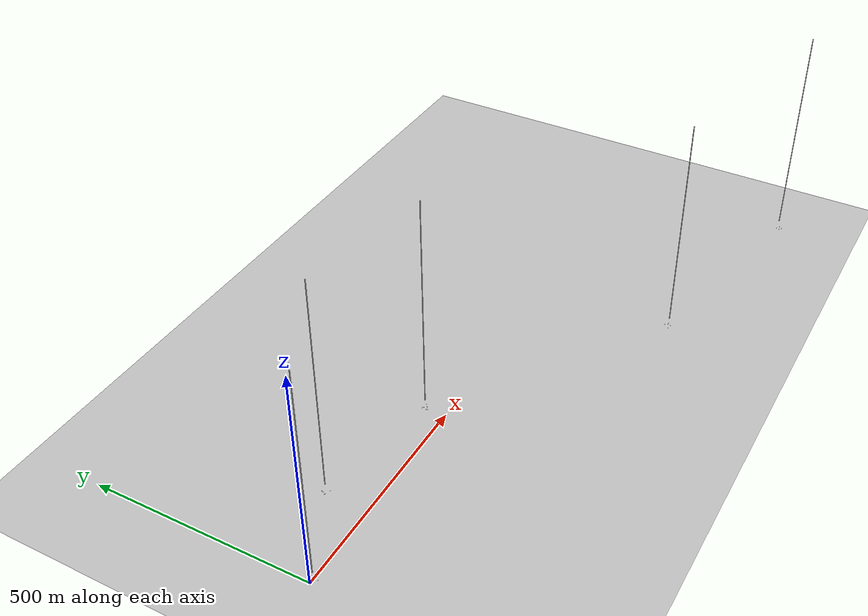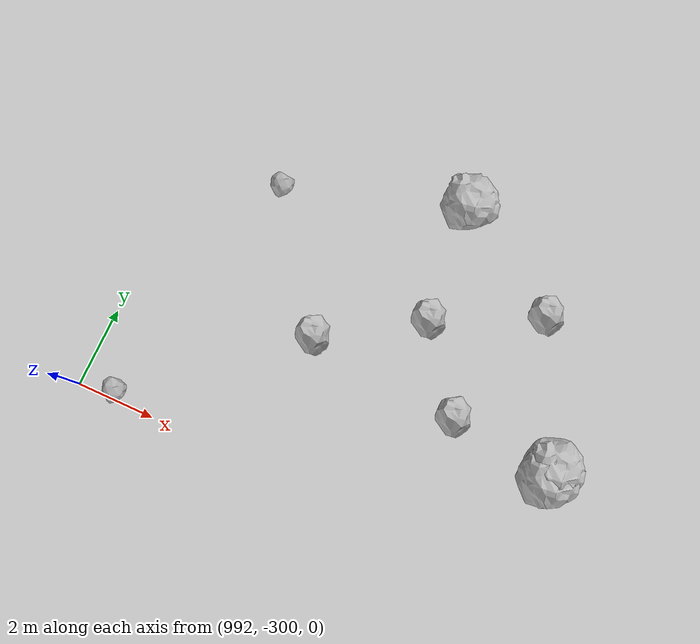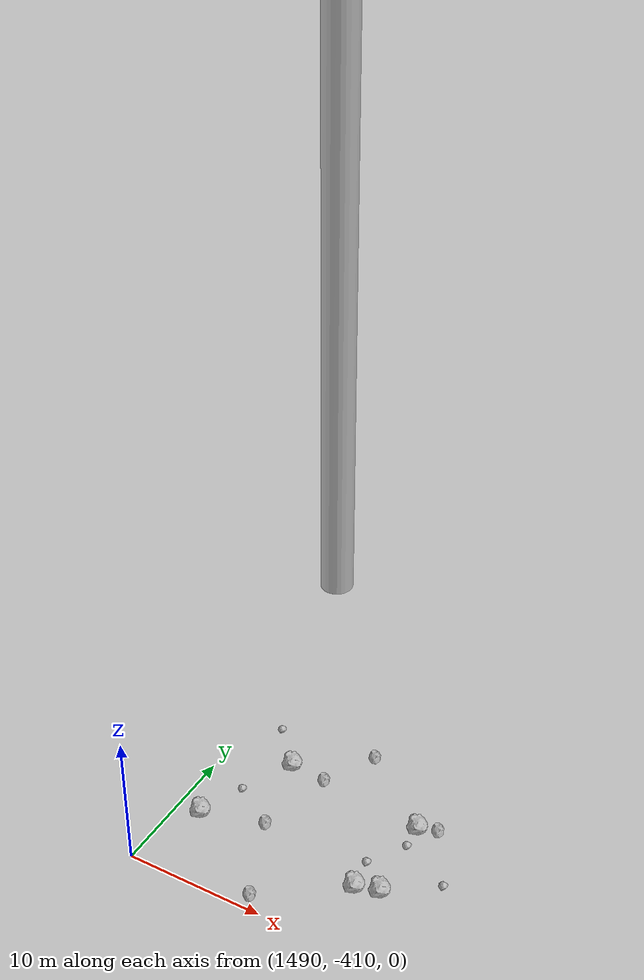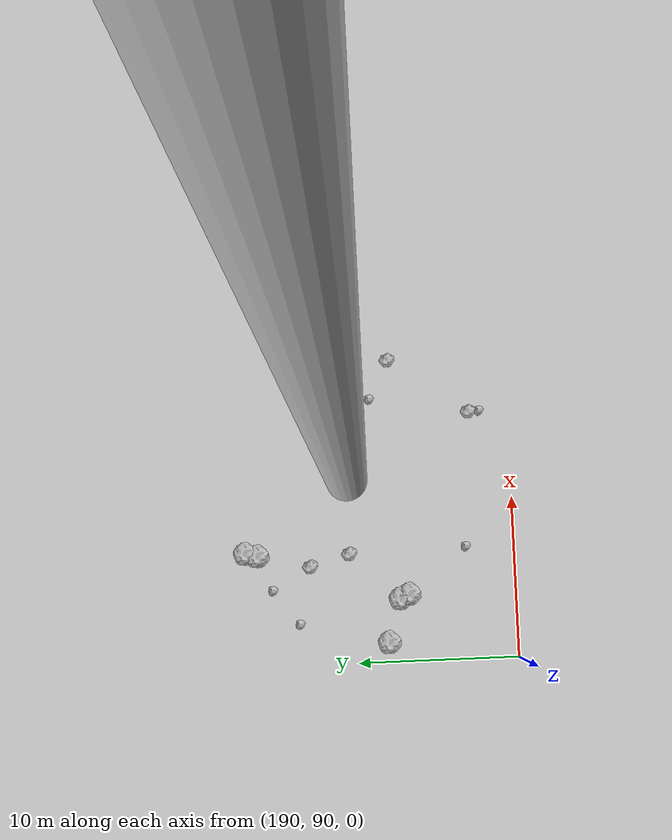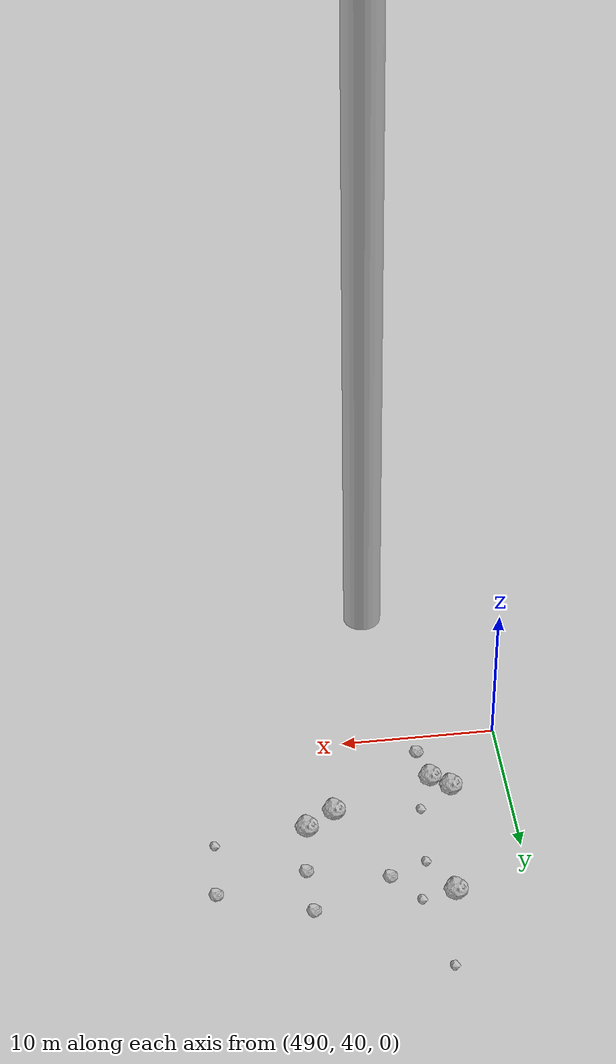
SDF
<?xml version="1.0" ?>
<sdf version="1.6">
  <world name="default">

    <include>
      <uri>model://custom_ground</uri>
    </include>

    <include>
      <uri>model://sun</uri>
    </include>

    <spherical_coordinates>
      <surface_model>EARTH_WGS84</surface_model>
      <latitude_deg>38.161479</latitude_deg>
      <longitude_deg>-122.454630</longitude_deg>
      <elevation>488.0</elevation>
      <heading_deg>90</heading_deg>
    </spherical_coordinates>

    <model name="rock1_0_0">
      <include>
        <uri>model://rock1</uri>
        <pose>17.688787751299813 -3.2370755171833565 0.5 0 0 0</pose>
      </include>
    </model>
    <model name="rock1_0_1">
      <include>
        <uri>model://rock1</uri>
        <pose>5.396047694618087 7.032196660427953 0.5 0 0 0</pose>
      </include>
    </model>
    <model name="rock1_0_2">
      <include>
        <uri>model://rock1</uri>
        <pose>14.14445244652763 8.385876624661076 0.5 0 0 0</pose>
      </include>
    </model>
    <model name="rock1_0_3">
      <include>
        <uri>model://rock1</uri>
        <pose>16.73019285737731 0.4838005141469708 0.5 0 0 0</pose>
      </include>
    </model>
    <model name="rock1_0_4">
      <include>
        <uri>model://rock1</uri>
        <pose>18.298150826258514 0.1784208609500748 0.5 0 0 0</pose>
      </include>
    </model>
    <model name="rock2_0_0">
      <include>
        <uri>model://rock2</uri>
        <pose>8.066369363671473 8.416463616261286 0.3 0 0 0</pose>
      </include>
    </model>
    <model name="rock2_0_1">
      <include>
        <uri>model://rock2</uri>
        <pose>15.28982258890489 8.256544803616649 0.3 0 0 0</pose>
      </include>
    </model>
    <model name="rock2_0_2">
      <include>
        <uri>model://rock2</uri>
        <pose>12.957619359505458 9.329820438663823 0.3 0 0 0</pose>
      </include>
    </model>
    <model name="rock2_0_3">
      <include>
        <uri>model://rock2</uri>
        <pose>18.323434957039424 4.011099036612924 0.3 0 0 0</pose>
      </include>
    </model>
    <model name="rock2_0_4">
      <include>
        <uri>model://rock2</uri>
        <pose>11.443972144177765 -3.0754477364086963 0.3 0 0 0</pose>
      </include>
    </model>
    <model name="rock3_0_0">
      <include>
        <uri>model://rock3</uri>
        <pose>15.160594903503418 6.633424551510579 0.2 0 0 0</pose>
      </include>
    </model>
    <model name="rock3_0_1">
      <include>
        <uri>model://rock3</uri>
        <pose>14.594624585863414 -1.528154307458534 0.2 0 0 0</pose>
      </include>
    </model>
    <model name="rock3_0_2">
      <include>
        <uri>model://rock3</uri>
        <pose>12.612091264073523 -9.153996060862557 0.2 0 0 0</pose>
      </include>
    </model>
    <model name="rock3_0_3">
      <include>
        <uri>model://rock3</uri>
        <pose>11.964483644792551 2.233440336377937 0.2 0 0 0</pose>
      </include>
    </model>
    <model name="rock3_0_4">
      <include>
        <uri>model://rock3</uri>
        <pose>4.820803834245353 7.783272304248342 0.2 0 0 0</pose>
      </include>
    </model>
    <model name="rock1_1_0">
      <include>
        <uri>model://rock1</uri>
        <pose>197.14980907824048 106.80546653032289 0.5 0 0 0</pose>
      </include>
    </model>
    <model name="rock1_1_1">
      <include>
        <uri>model://rock1</uri>
        <pose>193.9700908806631 97.24990235514491 0.5 0 0 0</pose>
      </include>
    </model>
    <model name="rock1_1_2">
      <include>
        <uri>model://rock1</uri>
        <pose>194.2284020299916 96.68850801719829 0.5 0 0 0</pose>
      </include>
    </model>
    <model name="rock1_1_3">
      <include>
        <uri>model://rock1</uri>
        <pose>191.29926047816477 98.03900958993381 0.5 0 0 0</pose>
      </include>
    </model>
    <model name="rock1_1_4">
      <include>
        <uri>model://rock1</uri>
        <pose>196.96080167461437 106.03894054646673 0.5 0 0 0</pose>
      </include>
    </model>
    <model name="rock2_1_0">
      <include>
        <uri>model://rock2</uri>
        <pose>196.86750057720062 100.3391522840526 0.3 0 0 0</pose>
      </include>
    </model>
    <model name="rock2_1_1">
      <include>
        <uri>model://rock2</uri>
        <pose>208.94944033073236 97.47078611389205 0.3 0 0 0</pose>
      </include>
    </model>
    <model name="rock2_1_2">
      <include>
        <uri>model://rock2</uri>
        <pose>206.51192183593977 102.44046848652125 0.3 0 0 0</pose>
      </include>
    </model>
    <model name="rock2_1_3">
      <include>
        <uri>model://rock2</uri>
        <pose>205.49611643049528 92.51067499507835 0.3 0 0 0</pose>
      </include>
    </model>
    <model name="rock2_1_4">
      <include>
        <uri>model://rock2</uri>
        <pose>196.16215642816354 102.80155538084657 0.3 0 0 0</pose>
      </include>
    </model>
    <model name="rock3_1_0">
      <include>
        <uri>model://rock3</uri>
        <pose>194.74091112446183 105.16037510505188 0.2 0 0 0</pose>
      </include>
    </model>
    <model name="rock3_1_1">
      <include>
        <uri>model://rock3</uri>
        <pose>192.58997944696216 103.54038815815558 0.2 0 0 0</pose>
      </include>
    </model>
    <model name="rock3_1_2">
      <include>
        <uri>model://rock3</uri>
        <pose>197.0159249849437 93.02146198748687 0.2 0 0 0</pose>
      </include>
    </model>
    <model name="rock3_1_3">
      <include>
        <uri>model://rock3</uri>
        <pose>206.50142901811307 98.68041629550713 0.2 0 0 0</pose>
      </include>
    </model>
    <model name="rock3_1_4">
      <include>
        <uri>model://rock3</uri>
        <pose>205.50686453915515 91.80334683841073 0.2 0 0 0</pose>
      </include>
    </model>
    <model name="rock1_2_0">
      <include>
        <uri>model://rock1</uri>
        <pose>501.25117860202715 46.08024121892779 0.5 0 0 0</pose>
      </include>
    </model>
    <model name="rock1_2_1">
      <include>
        <uri>model://rock1</uri>
        <pose>503.0950999712784 47.28382746653544 0.5 0 0 0</pose>
      </include>
    </model>
    <model name="rock1_2_2">
      <include>
        <uri>model://rock1</uri>
        <pose>494.66488216772257 53.36823360328783 0.5 0 0 0</pose>
      </include>
    </model>
    <model name="rock1_2_3">
      <include>
        <uri>model://rock1</uri>
        <pose>493.61512219313965 44.87633357814257 0.5 0 0 0</pose>
      </include>
    </model>
    <model name="rock1_2_4">
      <include>
        <uri>model://rock1</uri>
        <pose>494.8118262310695 43.93893791676196 0.5 0 0 0</pose>
      </include>
    </model>
    <model name="rock2_2_0">
      <include>
        <uri>model://rock2</uri>
        <pose>503.3210934598391 53.81550464321747 0.3 0 0 0</pose>
      </include>
    </model>
    <model name="rock2_2_1">
      <include>
        <uri>model://rock2</uri>
        <pose>503.4711122139085 50.70535780596377 0.3 0 0 0</pose>
      </include>
    </model>
    <model name="rock2_2_2">
      <include>
        <uri>model://rock2</uri>
        <pose>509.0550631410511 51.88642321165305 0.3 0 0 0</pose>
      </include>
    </model>
    <model name="rock2_2_3">
      <include>
        <uri>model://rock2</uri>
        <pose>498.43770646571124 51.742392676409025 0.3 0 0 0</pose>
      </include>
    </model>
    <model name="rock2_2_4">
      <include>
        <uri>model://rock2</uri>
        <pose>495.33541870666943 41.54332116630347 0.3 0 0 0</pose>
      </include>
    </model>
    <model name="rock3_2_0">
      <include>
        <uri>model://rock3</uri>
        <pose>508.87347098396725 47.893980248184846 0.2 0 0 0</pose>
      </include>
    </model>
    <model name="rock3_2_1">
      <include>
        <uri>model://rock3</uri>
        <pose>496.7198391042508 53.637134551962035 0.2 0 0 0</pose>
      </include>
    </model>
    <model name="rock3_2_2">
      <include>
        <uri>model://rock3</uri>
        <pose>495.5668923298897 58.73057384922238 0.2 0 0 0</pose>
      </include>
    </model>
    <model name="rock3_2_3">
      <include>
        <uri>model://rock3</uri>
        <pose>496.0514929724038 50.71527468762119 0.2 0 0 0</pose>
      </include>
    </model>
    <model name="rock3_2_4">
      <include>
        <uri>model://rock3</uri>
        <pose>495.7356438279545 46.40022138394317 0.2 0 0 0</pose>
      </include>
    </model>
    <model name="rock1_3_0">
      <include>
        <uri>model://rock1</uri>
        <pose>1003.3130699429622 -297.1097447640359 0.5 0 0 0</pose>
      </include>
    </model>
    <model name="rock1_3_1">
      <include>
        <uri>model://rock1</uri>
        <pose>998.9576242358 -291.9277723641412 0.5 0 0 0</pose>
      </include>
    </model>
    <model name="rock1_3_2">
      <include>
        <uri>model://rock1</uri>
        <pose>1002.0819843406712 -304.0863397799866 0.5 0 0 0</pose>
      </include>
    </model>
    <model name="rock1_3_3">
      <include>
        <uri>model://rock1</uri>
        <pose>1003.2907548433941 -297.3809543738042 0.5 0 0 0</pose>
      </include>
    </model>
    <model name="rock1_3_4">
      <include>
        <uri>model://rock1</uri>
        <pose>1008.1023791206272 -297.16280091210876 0.5 0 0 0</pose>
      </include>
    </model>
    <model name="rock2_3_0">
      <include>
        <uri>model://rock2</uri>
        <pose>997.6161925947857 -309.27729530322944 0.3 0 0 0</pose>
      </include>
    </model>
    <model name="rock2_3_1">
      <include>
        <uri>model://rock2</uri>
        <pose>999.1741061880999 -294.9789316733241 0.3 0 0 0</pose>
      </include>
    </model>
    <model name="rock2_3_2">
      <include>
        <uri>model://rock2</uri>
        <pose>1001.7813841716801 -293.70056857519046 0.3 0 0 0</pose>
      </include>
    </model>
    <model name="rock2_3_3">
      <include>
        <uri>model://rock2</uri>
        <pose>996.7422066455085 -296.5293810396985 0.3 0 0 0</pose>
      </include>
    </model>
    <model name="rock2_3_4">
      <include>
        <uri>model://rock2</uri>
        <pose>1000.6849615041065 -296.93328799801907 0.3 0 0 0</pose>
      </include>
    </model>
    <model name="rock3_3_0">
      <include>
        <uri>model://rock3</uri>
        <pose>1008.7583608534925 -300.4191365250389 0.2 0 0 0</pose>
      </include>
    </model>
    <model name="rock3_3_1">
      <include>
        <uri>model://rock3</uri>
        <pose>1006.2095612972633 -306.030126763797 0.2 0 0 0</pose>
      </include>
    </model>
    <model name="rock3_3_2">
      <include>
        <uri>model://rock3</uri>
        <pose>992.8698453457212 -299.79883670555876 0.2 0 0 0</pose>
      </include>
    </model>
    <model name="rock3_3_3">
      <include>
        <uri>model://rock3</uri>
        <pose>990.525595671513 -302.31255087610793 0.2 0 0 0</pose>
      </include>
    </model>
    <model name="rock3_3_4">
      <include>
        <uri>model://rock3</uri>
        <pose>994.3218518794375 -293.35942468390283 0.2 0 0 0</pose>
      </include>
    </model>
    <model name="rock1_4_0">
      <include>
        <uri>model://rock1</uri>
        <pose>1494.9372258297658 -397.28989898118624 0.5 0 0 0</pose>
      </include>
    </model>
    <model name="rock1_4_1">
      <include>
        <uri>model://rock1</uri>
        <pose>1491.7861135324863 -404.4043568416119 0.5 0 0 0</pose>
      </include>
    </model>
    <model name="rock1_4_2">
      <include>
        <uri>model://rock1</uri>
        <pose>1505.5105440120838 -398.35903599399455 0.5 0 0 0</pose>
      </include>
    </model>
    <model name="rock1_4_3">
      <include>
        <uri>model://rock1</uri>
        <pose>1504.2668119296968 -405.0190286003909 0.5 0 0 0</pose>
      </include>
    </model>
    <model name="rock1_4_4">
      <include>
        <uri>model://rock1</uri>
        <pose>1505.915331711541 -404.5535802252951 0.5 0 0 0</pose>
      </include>
    </model>
    <model name="rock2_4_0">
      <include>
        <uri>model://rock2</uri>
        <pose>1496.2567811682186 -403.0868714814391 0.3 0 0 0</pose>
      </include>
    </model>
    <model name="rock2_4_1">
      <include>
        <uri>model://rock2</uri>
        <pose>1506.8450104629947 -397.83665383980275 0.3 0 0 0</pose>
      </include>
    </model>
    <model name="rock2_4_2">
      <include>
        <uri>model://rock2</uri>
        <pose>1499.7246675004183 -393.65288412738045 0.3 0 0 0</pose>
      </include>
    </model>
    <model name="rock2_4_3">
      <include>
        <uri>model://rock2</uri>
        <pose>1498.7156079579593 -409.0042272799347 0.3 0 0 0</pose>
      </include>
    </model>
    <model name="rock2_4_4">
      <include>
        <uri>model://rock2</uri>
        <pose>1497.678669909965 -397.48273902622543 0.3 0 0 0</pose>
      </include>
    </model>
    <model name="rock3_4_0">
      <include>
        <uri>model://rock3</uri>
        <pose>1509.2616417025076 -402.06081455804656 0.2 0 0 0</pose>
      </include>
    </model>
    <model name="rock3_4_1">
      <include>
        <uri>model://rock3</uri>
        <pose>1505.5684578036964 -400.07924477215965 0.2 0 0 0</pose>
      </include>
    </model>
    <model name="rock3_4_2">
      <include>
        <uri>model://rock3</uri>
        <pose>1492.2995558885268 -394.3901604405678 0.2 0 0 0</pose>
      </include>
    </model>
    <model name="rock3_4_3">
      <include>
        <uri>model://rock3</uri>
        <pose>1503.9078913683488 -402.7104506692691 0.2 0 0 0</pose>
      </include>
    </model>
    <model name="rock3_4_4">
      <include>
        <uri>model://rock3</uri>
        <pose>1493.0438151667463 -401.0393614028738 0.2 0 0 0</pose>
      </include>
    </model>

    <model name="cylinder_1">
      <static>true</static>
      <link name="link">
        <visual name="visual">
          <geometry>
            <cylinder>
              <radius>1</radius>
              <length>500</length>
            </cylinder>
          </geometry>
        </visual>
      </link>
      <pose>10 0 270 0 0 0</pose>
    </model>

    <model name="cylinder_2">
      <static>true</static>
      <link name="link">
        <visual name="visual">
          <geometry>
            <cylinder>
              <radius>1</radius>
              <length>500</length>
            </cylinder>
          </geometry>
        </visual>
      </link>
      <pose>200 100 270 0 0 0</pose>
    </model>

    <model name="cylinder_3">
      <static>true</static>
      <link name="link">
        <visual name="visual">
          <geometry>
            <cylinder>
              <radius>1</radius>
              <length>500</length>
            </cylinder>
          </geometry>
        </visual>
      </link>
      <pose>500 50 270 0 0 0</pose>
    </model>

    <model name="cylinder_4">
      <static>true</static>
      <link name="link">
        <visual name="visual">
          <geometry>
            <cylinder>
              <radius>1</radius>
              <length>500</length>
            </cylinder>
          </geometry>
        </visual>
      </link>
      <pose>1000 -300 270 0 0 0</pose>
    </model>

    <model name="cylinder_5">
      <static>true</static>
      <link name="link">
        <visual name="visual">
          <geometry>
            <cylinder>
              <radius>1</radius>
              <length>500</length>
            </cylinder>
          </geometry>
        </visual>
      </link>
      <pose>1500 -400 270 0 0 0</pose>
    </model>

  </world>
</sdf>

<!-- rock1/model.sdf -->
<sdf version="1.6">
  <model name="rock1">
    <static>true</static> <!-- Set to true if the model should not move -->
    <pose>0 0 0 0 0 0</pose>

    <!--z offset is 0.5 for full scale-->

    <link name="link">
      <collision name="rock1_collision">
        <geometry>
          <mesh>
            <uri>model://meshes/rock1.dae</uri>
          </mesh>
        </geometry>
      </collision>
      <visual name="rock1_visual">
        <geometry>
          <mesh>
            <uri>model://meshes/rock1.dae</uri>
          </mesh>
        </geometry>
        <material>
          <script>
            <uri>model://materials/scripts/sand_pebbles.material</uri>
            <name>custom_ground/Image</name>
          </script>
        </material>
      </visual>
    </link>
  </model>
</sdf>

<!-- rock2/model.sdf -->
<sdf version="1.6">
  <model name="rock2">
    <static>true</static> <!-- Set to true if the model should not move -->
    <pose>0 0 0 0 0 0</pose>

    <!--z offset is 0.3 for full scale-->

    <link name="link">
      <collision name="rock2_collision">
        <geometry>
          <mesh>
            <uri>model://meshes/rock2.dae</uri>
          </mesh>
        </geometry>
      </collision>
      <visual name="rock2_visual">
        <geometry>
          <mesh>
            <uri>model://meshes/rock2.dae</uri>
          </mesh>
        </geometry>
        <material>
          <script>
            <uri>model://materials/scripts/sand_pebbles.material</uri>
            <name>custom_ground/Image</name>
          </script>
        </material>
      </visual>
    </link>
  </model>
</sdf>

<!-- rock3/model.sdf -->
<sdf version="1.6">
  <model name="rock3">
    <static>true</static> <!-- Set to true if the model should not move -->
    <pose>0 0 0 0 0 0</pose>

    <!--z offset is 0.2 for full scale-->

    <link name="link">
      <collision name="rock3_collision">
        <geometry>
          <mesh>
            <uri>model://meshes/rock3.dae</uri>
          </mesh>
        </geometry>
      </collision>
      <visual name="rock3_visual">
        <geometry>
          <mesh>
            <uri>model://meshes/rock3.dae</uri>
          </mesh>
        </geometry>
        <material>
          <script>
            <uri>model://materials/scripts/sand_pebbles.material</uri>
            <name>custom_ground/Image</name>
          </script>
        </material>
      </visual>
    </link>
  </model>
</sdf>

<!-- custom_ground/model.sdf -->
<sdf version="1.6">
  <model name="custom_ground">
    <static>true</static> <!-- Ground is static and immovable -->
    <link name="ground_link">
      <pose>240 0 0 0 0 0</pose> <!-- Position and orientation relative to the world -->
      <!-- Visual Representation -->
      <visual name="ground_visual">
        <geometry>
          <plane>
            <normal>0 0 1</normal> <!-- Upward facing plane -->
            <size>500 500</size> <!-- Size of the plane -->
          </plane>
        </geometry>
        <material>
          <script>
            <uri>model://materials/scripts/sand_pebbles.material</uri>
            <name>custom_ground/Image</name>
          </script>
        </material>
      </visual>

      <!-- Collision Representation -->
      <collision name="ground_collision">
        <geometry>
          <plane>
            <normal>0 0 1</normal>
            <size>100 100</size>
          </plane>
        </geometry>
      </collision>

    </link>
  </model>
</sdf>
